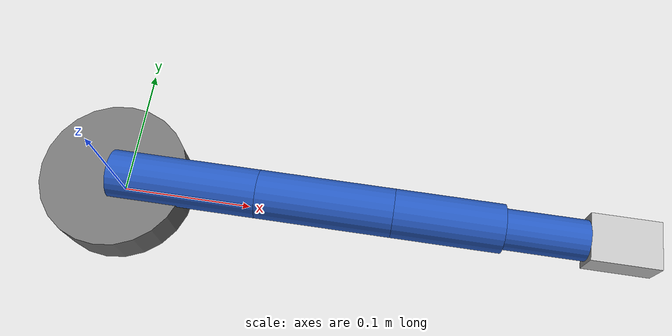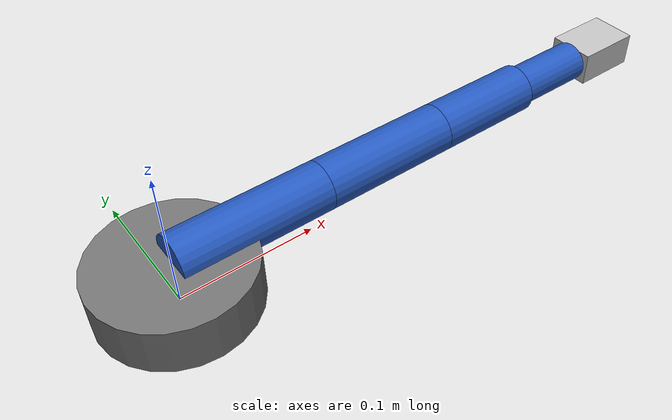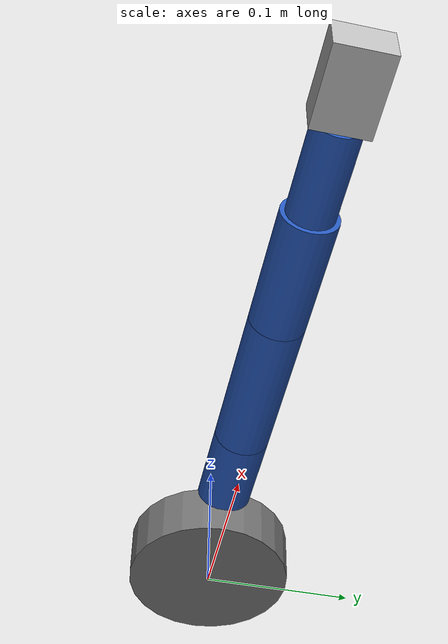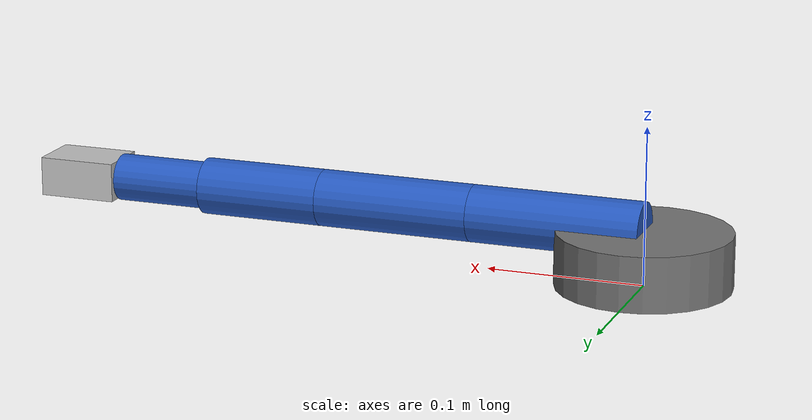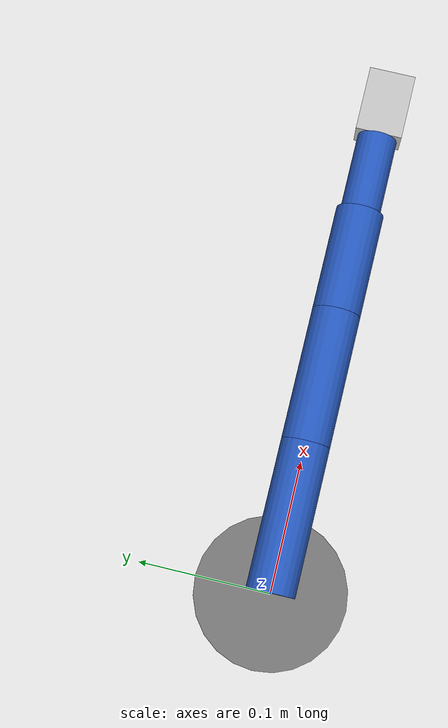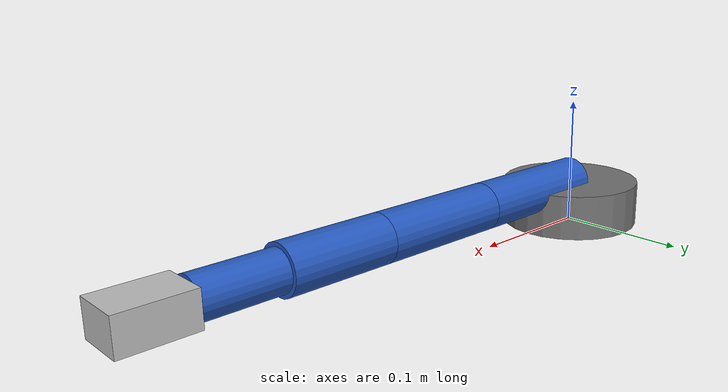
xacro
<?xml version="1.0"?>

<robot xmlns:xacro="http://www.ros.org/wiki/xacro"
       name="assistant_arm">

  <!-- Robot dimensions          -->

  <xacro:property name="base_radius" value="0.055"/>
  <xacro:property name="base_height" value="0.035"/>

  <xacro:property name="link1_length" value="0.11"/>
  <xacro:property name="link2_length" value="0.10"/>
  <xacro:property name="link3_length" value="0.08"/>
  <xacro:property name="link4_length" value="0.06"/>

  <xacro:property name="link_radius" value="0.018"/>

  <!-- Materials                 -->

  <material name="arm_blue">
    <color rgba="0.15 0.35 0.75 1.0"/>
  </material>

  <material name="arm_gray">
    <color rgba="0.45 0.45 0.45 1.0"/>
  </material>

  <material name="gripper">
    <color rgba="0.75 0.75 0.75 1.0"/>
  </material>

  <!-- Base                      -->

  <link name="base_link">

    <visual>
      <origin xyz="0 0 ${base_height/2}" rpy="0 0 0"/>
      <geometry>
        <cylinder radius="${base_radius}"
                   length="${base_height}"/>
      </geometry>
      <material name="arm_gray"/>
    </visual>

    <collision>
      <origin xyz="0 0 ${base_height/2}" rpy="0 0 0"/>
      <geometry>
        <cylinder radius="${base_radius}"
                   length="${base_height}"/>
      </geometry>
    </collision>

    <inertial>
      <origin xyz="0 0 ${base_height/2}"/>
      <mass value="0.30"/>
      <inertia
        ixx="0.00035"
        ixy="0"
        ixz="0"
        iyy="0.00035"
        iyz="0"
        izz="0.00045"/>
    </inertial>

  </link>

  <!-- Joint 1: Base Rotation    -->

  <joint name="base_joint"
         type="revolute">

    <parent link="base_link"/>
    <child link="link1"/>

    <origin xyz="0 0 ${base_height}" rpy="0 0 0"/>

    <axis xyz="0 0 1"/>

    <limit
      lower="-3.14159"
      upper="3.14159"
      effort="10"
      velocity="2.0"/>

  </joint>

  <!-- Link 1                    -->

  <link name="link1">

    <visual>
      <origin xyz="${link1_length/2} 0 0" rpy="0 1.5708 0"/>
      <geometry>
        <cylinder
          radius="${link_radius}"
          length="${link1_length}"/>
      </geometry>
      <material name="arm_blue"/>
    </visual>

    <collision>
      <origin xyz="${link1_length/2} 0 0" rpy="0 1.5708 0"/>
      <geometry>
        <cylinder
          radius="${link_radius}"
          length="${link1_length}"/>
      </geometry>
    </collision>

    <inertial>
      <origin xyz="${link1_length/2} 0 0"/>
      <mass value="0.15"/>
      <inertia
        ixx="0.00003"
        ixy="0"
        ixz="0"
        iyy="0.00040"
        iyz="0"
        izz="0.00040"/>
    </inertial>

  </link>

  <!-- Joint 2: Shoulder Pitch   -->

  <joint name="shoulder_joint"
         type="revolute">

    <parent link="link1"/>
    <child link="link2"/>

    <origin xyz="${link1_length} 0 0"
            rpy="0 0 0"/>

    <axis xyz="0 1 0"/>

    <limit
      lower="-1.57"
      upper="1.57"
      effort="10"
      velocity="2.0"/>

  </joint>

  <!-- Link 2                    -->

  <link name="link2">

    <visual>
      <origin xyz="${link2_length/2} 0 0"
              rpy="0 1.5708 0"/>
      <geometry>
        <cylinder
          radius="${link_radius}"
          length="${link2_length}"/>
      </geometry>
      <material name="arm_blue"/>
    </visual>

    <collision>
      <origin xyz="${link2_length/2} 0 0"
              rpy="0 1.5708 0"/>
      <geometry>
        <cylinder
          radius="${link_radius}"
          length="${link2_length}"/>
      </geometry>
    </collision>

    <inertial>
      <origin xyz="${link2_length/2} 0 0"/>
      <mass value="0.12"/>
      <inertia
        ixx="0.00002"
        ixy="0"
        ixz="0"
        iyy="0.00025"
        iyz="0"
        izz="0.00025"/>
    </inertial>

  </link>

  <!-- Joint 3: Elbow Pitch      -->

  <joint name="elbow_joint"
         type="revolute">

    <parent link="link2"/>
    <child link="link3"/>

    <origin xyz="${link2_length} 0 0"
            rpy="0 0 0"/>

    <axis xyz="0 1 0"/>

    <limit
      lower="-1.57"
      upper="1.57"
      effort="8"
      velocity="2.0"/>

  </joint>

  <!-- Link 3                    -->

  <link name="link3">

    <visual>
      <origin xyz="${link3_length/2} 0 0"
              rpy="0 1.5708 0"/>
      <geometry>
        <cylinder
          radius="${link_radius}"
          length="${link3_length}"/>
      </geometry>
      <material name="arm_blue"/>
    </visual>

    <collision>
      <origin xyz="${link3_length/2} 0 0"
              rpy="0 1.5708 0"/>
      <geometry>
        <cylinder
          radius="${link_radius}"
          length="${link3_length}"/>
      </geometry>
    </collision>

    <inertial>
      <origin xyz="${link3_length/2} 0 0"/>
      <mass value="0.10"/>
      <inertia
        ixx="0.000015"
        ixy="0"
        ixz="0"
        iyy="0.00015"
        iyz="0"
        izz="0.00015"/>
    </inertial>

  </link>

  <!-- Joint 4: Wrist Pitch      -->

  <joint name="wrist_joint"
         type="revolute">

    <parent link="link3"/>
    <child link="link4"/>

    <origin xyz="${link3_length} 0 0"
            rpy="0 0 0"/>

    <axis xyz="0 1 0"/>

    <limit
      lower="-1.57"
      upper="1.57"
      effort="5"
      velocity="2.0"/>

  </joint>

  <!-- Link 4                    -->

  <link name="link4">

    <visual>
      <origin xyz="${link4_length/2} 0 0"
              rpy="0 1.5708 0"/>
      <geometry>
        <cylinder
          radius="0.015"
          length="${link4_length}"/>
      </geometry>
      <material name="arm_blue"/>
    </visual>

    <collision>
      <origin xyz="${link4_length/2} 0 0"
              rpy="0 1.5708 0"/>
      <geometry>
        <cylinder
          radius="0.015"
          length="${link4_length}"/>
      </geometry>
    </collision>

    <inertial>
      <origin xyz="${link4_length/2} 0 0"/>
      <mass value="0.06"/>
      <inertia
        ixx="0.00001"
        ixy="0"
        ixz="0"
        iyy="0.00006"
        iyz="0"
        izz="0.00006"/>
    </inertial>

  </link>

  <!-- Fixed End Effector        -->

  <joint name="gripper_mount_joint"
         type="fixed">

    <parent link="link4"/>
    <child link="gripper_link"/>

    <origin xyz="${link4_length} 0 0"
            rpy="0 0 0"/>

  </joint>

  <link name="gripper_link">

    <visual>
      <origin xyz="0.025 0 0"/>
      <geometry>
        <box size="0.05 0.035 0.025"/>
      </geometry>
      <material name="gripper"/>
    </visual>

    <collision>
      <origin xyz="0.025 0 0"/>
      <geometry>
        <box size="0.05 0.035 0.025"/>
      </geometry>
    </collision>

    <inertial>
      <origin xyz="0.025 0 0"/>
      <mass value="0.05"/>
      <inertia
        ixx="0.00001"
        ixy="0"
        ixz="0"
        iyy="0.00002"
        iyz="0"
        izz="0.00002"/>
    </inertial>

  </link>

</robot>
